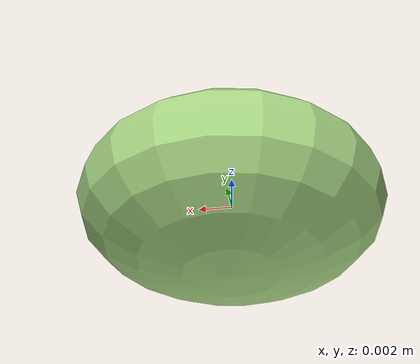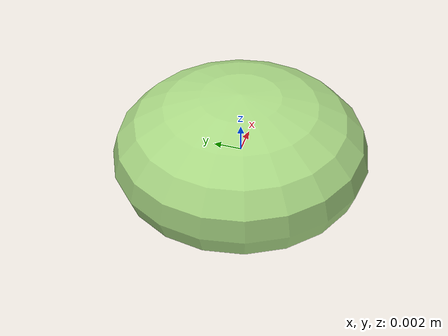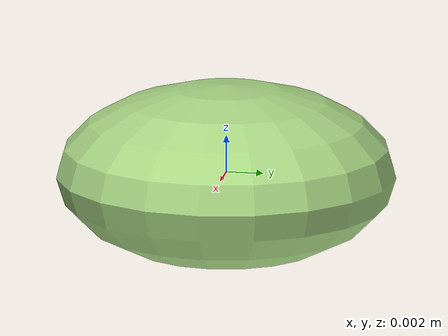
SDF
<?xml version="1.0" ?>
<sdf version="1.8">
	<model name="veggie">
		<link name="link0">
			<inertial>
				<mass>0.005</mass>
				<inertia>
					<ixx>1.0464989563123225e-06</ixx>
					<ixy>0</ixy>
					<ixz>0</ixz>
					<iyy>1.0464989563123225e-06</iyy>
					<iyz>0</iyz>
					<izz>1.643974480184706e-06</izz>
				</inertia>
			</inertial>
			<visual name="base_visual">
				<pose>0 0 0 0 0 0</pose>
				<geometry>
					<ellipsoid>
						<radii>0.009066351196001361 0.009066351196001361 0.004738266731833165</radii>
					</ellipsoid>
				</geometry>
				<material>
					<ambient>0.659 0.839 0.514 1</ambient>
					<diffuse>0.659 0.839 0.514 1</diffuse>
					<specular>0 0 0 0</specular>
					<emissive>0 0 0 1</emissive>
				</material>
			</visual>
			<collision name="base_collision">
				<pose>0 0 0 0 0 0 </pose>
				<geometry>
					<ellipsoid>
						<radii>0.009066351196001361 0.009066351196001361 0.004738266731833165</radii>
					</ellipsoid>
				</geometry>
				<drake:proximity_properties>
					<drake:compliant_hydroelastic/>
					<drake:mesh_resolution_hint>0.02</drake:mesh_resolution_hint>
					<drake:hydroelastic_modulus>1e5</drake:hydroelastic_modulus>
					<drake:mu_static>0.3</drake:mu_static>
					<drake:mu_dynamic>0.3</drake:mu_dynamic>
				</drake:proximity_properties>
			</collision>
		</link>
		<!-- link1 -->
		<joint name="joint1" type="fixed">
			<pose relative_to="link0">0.0 0.0 0.0 0.0 0.0 0.0</pose>
			<parent>link0</parent>
			<child>link1</child>
		</joint>
		<link name="link1">
			<pose relative_to="joint1">0 0 0 0 0 0</pose>
			<inertial>
				<mass>0.005</mass>
				<inertia>
					<ixx>1.0464989563123225e-06</ixx>
					<ixy>0</ixy>
					<ixz>0</ixz>
					<iyy>1.0464989563123225e-06</iyy>
					<iyz>0</iyz>
					<izz>1.643974480184706e-06</izz>
				</inertia>
			</inertial>
			<visual name="link1_visual">
				<pose>0 0 0 0 0 0</pose>
				<geometry>
					<ellipsoid>
						<radii>0.009066351196001361 0.009066351196001361 0.004738266731833165</radii>
					</ellipsoid>
				</geometry>
				<material>
					<ambient>0.659 0.839 0.514 1</ambient>
					<diffuse>0.659 0.839 0.514 1</diffuse>
					<specular>0 0 0 0</specular>
					<emissive>0 0 0 1</emissive>
				</material>
			</visual>
			<collision name="link1_collision">
				<pose>0 0 0 0 0 0 </pose>
				<geometry>
					<ellipsoid>
						<radii>0.009066351196001361 0.009066351196001361 0.004738266731833165</radii>
					</ellipsoid>
				</geometry>
				<drake:proximity_properties>
					<drake:compliant_hydroelastic/>
					<drake:mesh_resolution_hint>0.02</drake:mesh_resolution_hint>
					<drake:hydroelastic_modulus>1e5</drake:hydroelastic_modulus>
					<drake:mu_static>0.3</drake:mu_static>
					<drake:mu_dynamic>0.3</drake:mu_dynamic>
				</drake:proximity_properties>
			</collision>
		</link>
		<!-- link2 -->
		<joint name="joint2" type="fixed">
			<pose relative_to="link0">0.0 0.0 0.0 0.0 0.0 0.0</pose>
			<parent>link0</parent>
			<child>link2</child>
		</joint>
		<link name="link2">
			<pose relative_to="joint2">0 0 0 0 0 0</pose>
			<inertial>
				<mass>0.005</mass>
				<inertia>
					<ixx>1.0464989563123225e-06</ixx>
					<ixy>0</ixy>
					<ixz>0</ixz>
					<iyy>1.0464989563123225e-06</iyy>
					<iyz>0</iyz>
					<izz>1.643974480184706e-6</izz>
				</inertia>
			</inertial>
			<visual name="link2_visual">
				<pose>0 0 0 0 0 0</pose>
				<geometry>
					<ellipsoid>
						<radii>0.009066351196001361 0.009066351196001361 0.004738266731833165</radii>
					</ellipsoid>
				</geometry>
				<material>
					<ambient>0.659 0.839 0.514 1</ambient>
					<diffuse>0.659 0.839 0.514 1</diffuse>
					<specular>0 0 0 0</specular>
					<emissive>0 0 0 1</emissive>
				</material>
			</visual>
			<collision name="link2_collision">
				<pose>0 0 0 0 0 0 </pose>
				<geometry>
					<ellipsoid>
						<radii>0.009066351196001361 0.009066351196001361 0.004738266731833165</radii>
					</ellipsoid>
				</geometry>
				<drake:proximity_properties>
					<drake:compliant_hydroelastic/>
					<drake:mesh_resolution_hint>0.02</drake:mesh_resolution_hint>
					<drake:hydroelastic_modulus>1e5</drake:hydroelastic_modulus>
					<drake:mu_static>0.3</drake:mu_static>
					<drake:mu_dynamic>0.3</drake:mu_dynamic>
				</drake:proximity_properties>
			</collision>
		</link>
		<drake:collision_filter_group name="group_link1">
			<drake:member>link0</drake:member>
			<drake:member>link1</drake:member>
			<drake:ignored_collision_filter_group>group_link1</drake:ignored_collision_filter_group>
		</drake:collision_filter_group>
		<drake:collision_filter_group name="group_link2">
			<drake:member>link0</drake:member>
			<drake:member>link2</drake:member>
			<drake:ignored_collision_filter_group>group_link2</drake:ignored_collision_filter_group>
		</drake:collision_filter_group>
	</model>
</sdf>
